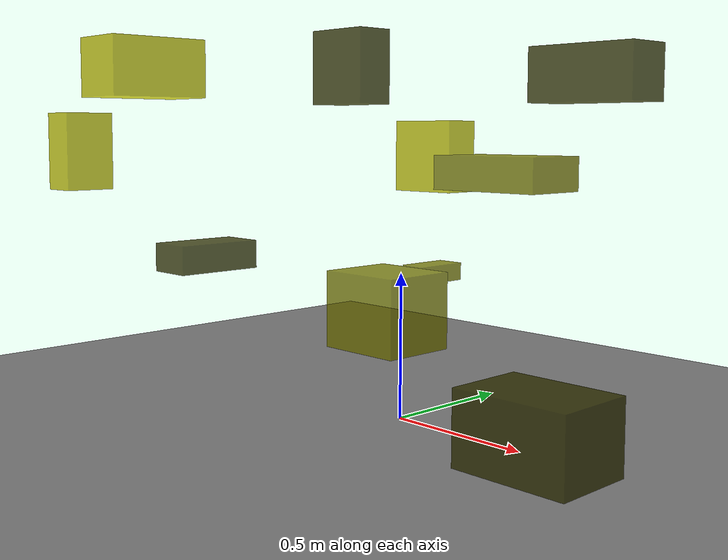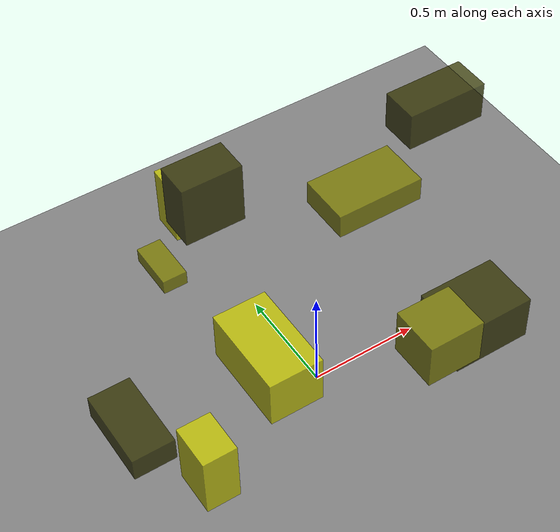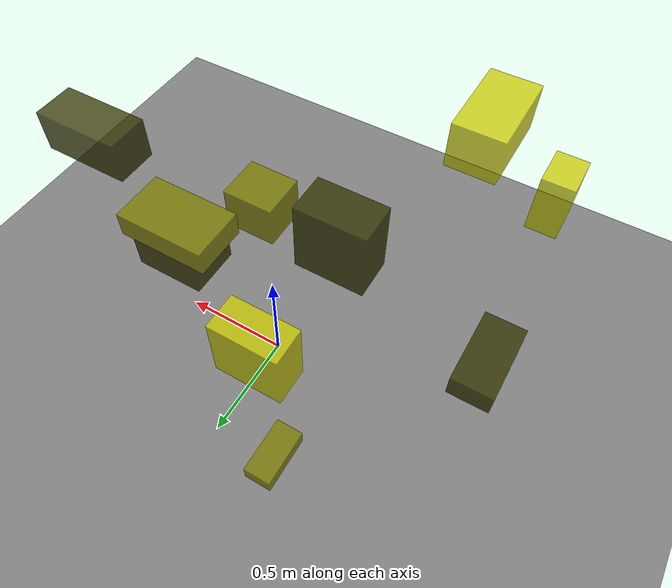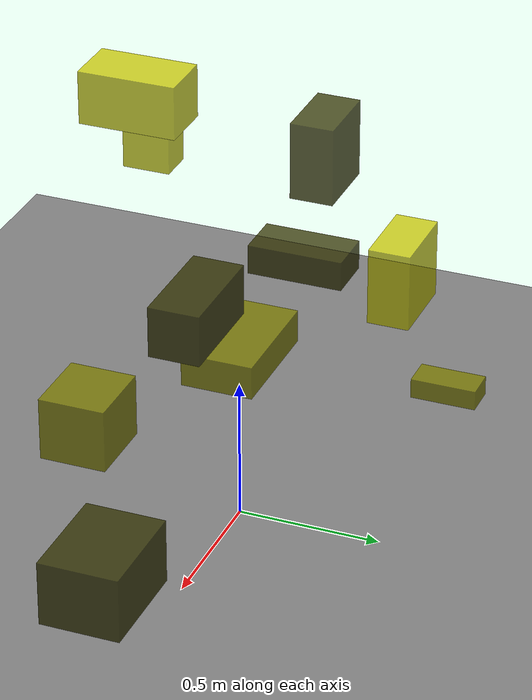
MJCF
<?xml version="1.0"?>
<mujoco model="obstacle_scene">
  <compiler angle="radian" coordinate="local"/>
  <option timestep="0.001" gravity="0 0 -9.81"/>

  <asset>
    <material name="obstacle_mat" rgba="0.8 0.8 0.0 0.8"/>
    <material name="ground_mat" rgba="0.5 0.5 0.5 1"/>
  </asset>

  <worldbody>
    <!-- Ground plane -->
    <geom name="ground" type="plane" size="3 3 0.1" material="ground_mat"/>

    <!-- Obstacles -->
    <body name="obstacle_0" pos="-0.929588 -0.133215 0.489553">
      <geom name="obs_0" type="box" size="0.090982 0.177349 0.055361" rgba="0.2 0.2 0.0 0.8"/>
    </body>
    <body name="obstacle_1" pos="0.323787 0.136893 0.845698">
      <geom name="obs_1" type="box" size="0.196955 0.119408 0.055840" rgba="0.5 0.5 0.0 0.8"/>
    </body>
    <body name="obstacle_2" pos="-0.602496 -0.618406 1.189219">
      <geom name="obs_2" type="box" size="0.101800 0.178179 0.097906" rgba="0.8 0.8 0.0 0.8"/>
    </body>
    <body name="obstacle_3" pos="0.700194 -0.189456 0.143999">
      <geom name="obs_3" type="box" size="0.189309 0.141219 0.116573" rgba="0.2 0.2 0.0 0.8"/>
    </body>
    <body name="obstacle_4" pos="0.324251 -0.403380 0.467106">
      <geom name="obs_4" type="box" size="0.128435 0.116006 0.111464" rgba="0.5 0.5 0.0 0.8"/>
    </body>
    <body name="obstacle_5" pos="-0.269547 0.468967 0.884420">
      <geom name="obs_5" type="box" size="0.134838 0.071616 0.134307" rgba="0.8 0.8 0.0 0.8"/>
    </body>
    <body name="obstacle_6" pos="-0.398282 0.145412 1.214332">
      <geom name="obs_6" type="box" size="0.125818 0.074920 0.135978" rgba="0.2 0.2 0.0 0.8"/>
    </body>
    <body name="obstacle_7" pos="-0.392492 0.598932 0.408360">
      <geom name="obs_7" type="box" size="0.055503 0.113947 0.034913" rgba="0.5 0.5 0.0 0.8"/>
    </body>
    <body name="obstacle_8" pos="-0.897173 -0.696746 0.909412">
      <geom name="obs_8" type="box" size="0.065704 0.088046 0.134117" rgba="0.8 0.8 0.0 0.8"/>
    </body>
    <body name="obstacle_9" pos="0.652135 0.129110 1.148896">
      <geom name="obs_9" type="box" size="0.176894 0.083792 0.084482" rgba="0.2 0.2 0.0 0.8"/>
    </body>
  </worldbody>
</mujoco>
